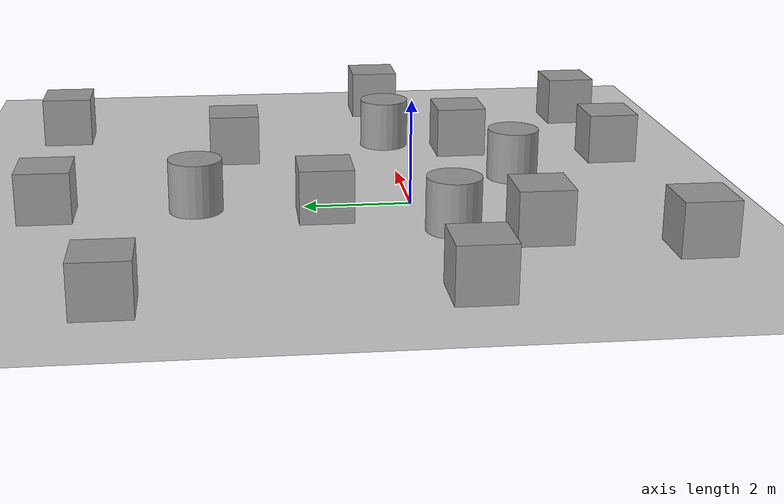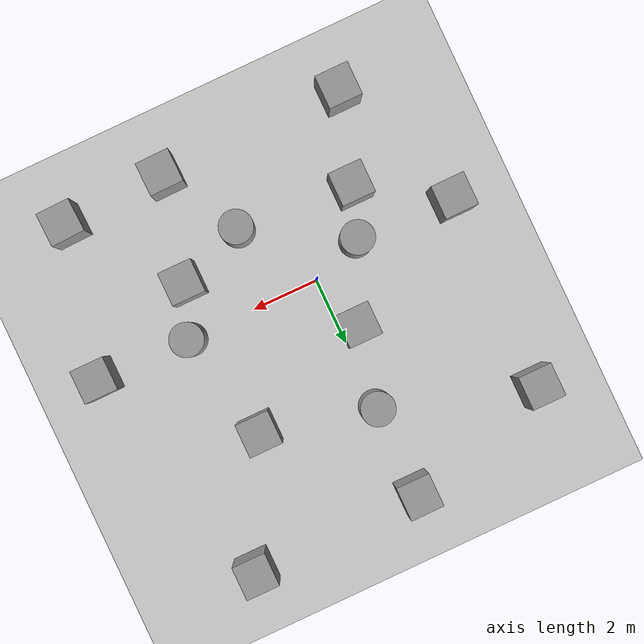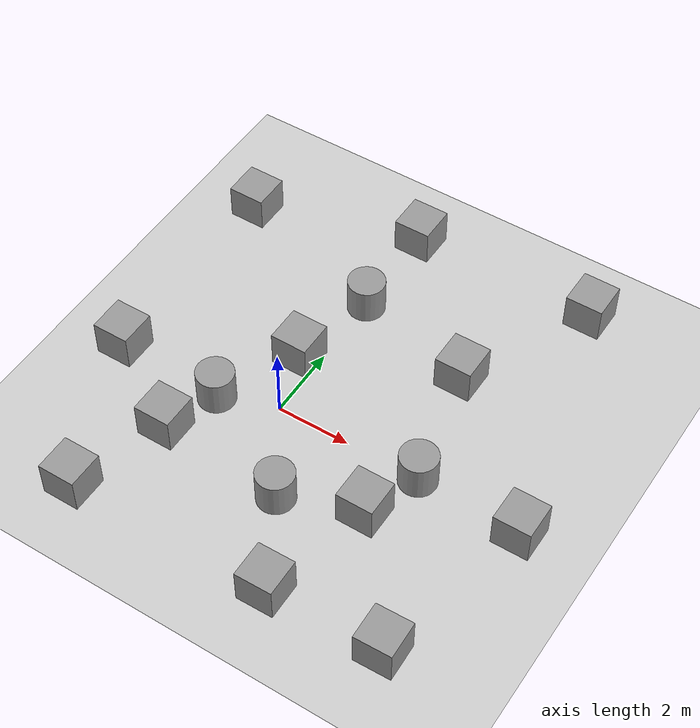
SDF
<sdf version="1.4">
 <world name="default">
  <light name="sun" type="directional">
   <pose>0 0 10 0 -0 0</pose>
   <diffuse>0.8 0.8 0.8 1</diffuse>
   <specular>0.2 0.2 0.2 1</specular>
   <attenuation>
    <range>1000</range>
    <constant>0.9</constant>
    <linear>0.01</linear>
    <quadratic>0.001</quadratic>
   </attenuation>
   <direction>0.5 0.1 -0.9</direction>
  </light>
  <model name="ground_plane">
   <static>1</static>
   <link name="link">
    <collision name="collision">
     <geometry><plane><normal>0 0 1</normal><size>100 100</size></plane></geometry>
     <surface><friction><ode><mu>100</mu><mu2>50</mu2></ode></friction></surface>
    </collision>
    <visual name="visual">
     <cast_shadows>0</cast_shadows>
     <geometry><plane><normal>0 0 1</normal><size>100 100</size></plane></geometry>
     <material>
      <script><uri>file://media/materials/scripts/gazebo.material</uri><name>Gazebo/Grey</name></script>
     </material>
    </visual>
    <velocity_decay><linear>0</linear><angular>0</angular></velocity_decay>
   </link>
  </model>
  <physics type="ode">
   <max_step_size>0.01</max_step_size>
   <real_time_factor>1</real_time_factor>
   <real_time_update_rate>100</real_time_update_rate>
   <gravity>0 0 -9.8</gravity>
  </physics>
  <scene><ambient>0.4 0.4 0.4 1</ambient><background>0.7 0.7 0.7 1</background><shadows>1</shadows></scene>
  <model name="unit_box_1">
   <pose>3.45128 -1.50492 0.5 0 -0 0</pose>
   <link name="link">
    <inertial>
     <mass>1</mass>
     <inertia><ixx>1</ixx><ixy>0</ixy><ixz>0</ixz><iyy>1</iyy><iyz>0</iyz><izz>1</izz></inertia>
    </inertial>
    <collision name="collision"><geometry><box><size>1 1 1</size></box></geometry></collision>
    <visual name="visual">
     <geometry><box><size>1 1 1</size></box></geometry>
     <material>
      <script><uri>file://media/materials/scripts/gazebo.material</uri><name>Gazebo/Grey</name></script>
     </material>
    </visual>
    <velocity_decay><linear>0</linear><angular>0</angular></velocity_decay>
   </link>
   <static>0</static>
  </model>
  <model name="unit_box_2">
   <pose>-2 -2 0.5 0 -0 0</pose>
   <link name="link">
    <inertial>
     <mass>1</mass>
     <inertia><ixx>1</ixx><ixy>0</ixy><ixz>0</ixz><iyy>1</iyy><iyz>0</iyz><izz>1</izz></inertia>
    </inertial>
    <collision name="collision"><geometry><box><size>1 1 1</size></box></geometry></collision>
    <visual name="visual">
     <geometry><box><size>1 1 1</size></box></geometry>
     <material>
      <script><uri>file://media/materials/scripts/gazebo.material</uri><name>Gazebo/Grey</name></script>
     </material>
    </visual>
    <velocity_decay><linear>0</linear><angular>0</angular></velocity_decay>
   </link>
   <static>0</static>
  </model>
  <model name="unit_box_3">
   <pose>-0.507011 1.65376 0.5 0 -0 0</pose>
   <link name="link">
    <inertial>
     <mass>1</mass>
     <inertia><ixx>1</ixx><ixy>0</ixy><ixz>0</ixz><iyy>1</iyy><iyz>0</iyz><izz>1</izz></inertia>
    </inertial>
    <collision name="collision"><geometry><box><size>1 1 1</size></box></geometry></collision>
    <visual name="visual">
     <geometry><box><size>1 1 1</size></box></geometry>
     <material>
      <script><uri>file://media/materials/scripts/gazebo.material</uri><name>Gazebo/Grey</name></script>
     </material>
    </visual>
    <velocity_decay><linear>0</linear><angular>0</angular></velocity_decay>
   </link>
   <static>0</static>
  </model>
  <model name="unit_box_4">
   <pose>3.30014 3.22538 0.5 0 -0 0</pose>
   <link name="link">
    <inertial>
     <mass>1</mass>
     <inertia><ixx>1</ixx><ixy>0</ixy><ixz>0</ixz><iyy>1</iyy><iyz>0</iyz><izz>1</izz></inertia>
    </inertial>
    <collision name="collision"><geometry><box><size>1 1 1</size></box></geometry></collision>
    <visual name="visual">
     <geometry><box><size>1 1 1</size></box></geometry>
     <material>
      <script><uri>file://media/materials/scripts/gazebo.material</uri><name>Gazebo/Grey</name></script>
     </material>
    </visual>
    <velocity_decay><linear>0</linear><angular>0</angular></velocity_decay>
   </link>
   <static>0</static>
  </model>
  <model name="unit_cylinder_1">
   <pose>4 -0 0.49912 -0 -0 -0</pose>
   <link name="link">
    <inertial>
     <mass>1</mass>
     <inertia><ixx>1</ixx><ixy>0</ixy><ixz>0</ixz><iyy>1</iyy><iyz>0</iyz><izz>1</izz></inertia>
    </inertial>
    <collision name="collision">
     <geometry><cylinder><radius>0.5</radius><length>1</length></cylinder></geometry>
    </collision>
    <visual name="visual">
     <geometry><cylinder><radius>0.5</radius><length>1</length></cylinder></geometry>
     <material>
      <script><uri>file://media/materials/scripts/gazebo.material</uri><name>Gazebo/Grey</name></script>
     </material>
    </visual>
    <velocity_decay><linear>0</linear><angular>0</angular></velocity_decay>
   </link>
   <static>0</static>
  </model>
  <model name="unit_cylinder_2">
   <pose>0 4 0.49912 -0 -0 -0</pose>
   <link name="link">
    <inertial>
     <mass>1</mass>
     <inertia><ixx>1</ixx><ixy>0</ixy><ixz>0</ixz><iyy>1</iyy><iyz>0</iyz><izz>1</izz></inertia>
    </inertial>
    <collision name="collision">
     <geometry><cylinder><radius>0.5</radius><length>1</length></cylinder></geometry>
    </collision>
    <visual name="visual">
     <geometry><cylinder><radius>0.5</radius><length>1</length></cylinder></geometry>
     <material>
      <script><uri>file://media/materials/scripts/gazebo.material</uri><name>Gazebo/Grey</name></script>
     </material>
    </visual>
    <velocity_decay><linear>0</linear><angular>0</angular></velocity_decay>
   </link>
   <static>0</static>
  </model>
  <model name="unit_cylinder_3">
   <pose>-1.50746 -0.553057 0.49912 -0 -0 -1e-06</pose>
   <link name="link">
    <inertial>
     <mass>1</mass>
     <inertia><ixx>1</ixx><ixy>0</ixy><ixz>0</ixz><iyy>1</iyy><iyz>0</iyz><izz>1</izz></inertia>
    </inertial>
    <collision name="collision">
     <geometry><cylinder><radius>0.5</radius><length>1</length></cylinder></geometry>
    </collision>
    <visual name="visual">
     <geometry><cylinder><radius>0.5</radius><length>1</length></cylinder></geometry>
     <material>
      <script><uri>file://media/materials/scripts/gazebo.material</uri><name>Gazebo/Grey</name></script>
     </material>
    </visual>
    <velocity_decay><linear>0</linear><angular>0</angular></velocity_decay>
   </link>
   <static>0</static>
  </model>
  <model name="unit_cylinder_4">
   <pose>1.43029 -2.25382 0.49912 -0 -0 -1e-06</pose>
   <link name="link">
    <inertial>
     <mass>1</mass>
     <inertia><ixx>1</ixx><ixy>0</ixy><ixz>0</ixz><iyy>1</iyy><iyz>0</iyz><izz>1</izz></inertia>
    </inertial>
    <collision name="collision">
     <geometry><cylinder><radius>0.5</radius><length>1</length></cylinder></geometry>
    </collision>
    <visual name="visual">
     <geometry><cylinder><radius>0.5</radius><length>1</length></cylinder></geometry>
     <material>
      <script><uri>file://media/materials/scripts/gazebo.material</uri><name>Gazebo/Grey</name></script>
     </material>
    </visual>
    <velocity_decay><linear>0</linear><angular>0</angular></velocity_decay>
   </link>
   <static>0</static>
  </model>
  <spherical_coordinates>
   <surface_model>EARTH_WGS84</surface_model>
   <latitude_deg>0</latitude_deg>
   <longitude_deg>0</longitude_deg>
   <elevation>0</elevation>
   <heading_deg>0</heading_deg>
  </spherical_coordinates>
  <model name="unit_box_2_0">
   <pose>-4.43389 -0.463947 0.499156 0.000232 -1e-06 0.001097</pose>
   <link name="link">
    <inertial>
     <mass>1</mass>
     <inertia><ixx>1</ixx><ixy>0</ixy><ixz>0</ixz><iyy>1</iyy><iyz>0</iyz><izz>1</izz></inertia>
    </inertial>
    <collision name="collision"><geometry><box><size>1 7.26978 1</size></box></geometry></collision>
    <visual name="visual">
     <geometry><box><size>1 1 1</size></box></geometry>
     <material>
      <script><uri>file://media/materials/scripts/gazebo.material</uri><name>Gazebo/Grey</name></script>
     </material>
    </visual>
    <velocity_decay><linear>0</linear><angular>0</angular></velocity_decay>
   </link>
   <static>0</static>
  </model>
  <model name="unit_box_3_0">
   <pose>-4.38938 5.3797 0.430624 0.000346 8.1e-05 -0.000267</pose>
   <link name="link">
    <inertial>
     <mass>1</mass>
     <inertia><ixx>1</ixx><ixy>0</ixy><ixz>0</ixz><iyy>1</iyy><iyz>0</iyz><izz>1</izz></inertia>
    </inertial>
    <collision name="collision"><geometry><box><size>1 4.25055 1</size></box></geometry></collision>
    <visual name="visual">
     <geometry><box><size>1 1 1</size></box></geometry>
     <material>
      <script><uri>file://media/materials/scripts/gazebo.material</uri><name>Gazebo/Grey</name></script>
     </material>
    </visual>
    <velocity_decay><linear>0</linear><angular>0</angular></velocity_decay>
   </link>
   <static>0</static>
  </model>
  <model name="unit_box_5">
   <pose>-2.81729 -4.59983 0.499209 -1.57075 -0.000268 0.000637</pose>
   <link name="link">
    <inertial>
     <mass>1</mass>
     <inertia><ixx>1</ixx><ixy>0</ixy><ixz>0</ixz><iyy>1</iyy><iyz>0</iyz><izz>1</izz></inertia>
    </inertial>
    <collision name="collision"><geometry><box><size>5.75885 1 1</size></box></geometry></collision>
    <visual name="visual">
     <geometry><box><size>1 1 1</size></box></geometry>
     <material>
      <script><uri>file://media/materials/scripts/gazebo.material</uri><name>Gazebo/Grey</name></script>
     </material>
    </visual>
    <velocity_decay><linear>0</linear><angular>0</angular></velocity_decay>
   </link>
   <static>0</static>
  </model>
  <model name="unit_box_6">
   <pose>2.71265 -4.53175 0.492382 0 -0.002992 0.015411</pose>
   <link name="link">
    <inertial>
     <mass>1</mass>
     <inertia><ixx>1</ixx><ixy>0</ixy><ixz>0</ixz><iyy>1</iyy><iyz>0</iyz><izz>1</izz></inertia>
    </inertial>
    <collision name="collision"><geometry><box><size>5.09672 1 1</size></box></geometry></collision>
    <visual name="visual">
     <geometry><box><size>1 1 1</size></box></geometry>
     <material>
      <script><uri>file://media/materials/scripts/gazebo.material</uri><name>Gazebo/Grey</name></script>
     </material>
    </visual>
    <velocity_decay><linear>0</linear><angular>0</angular></velocity_decay>
   </link>
   <static>0</static>
  </model>
  <model name="unit_box_7">
   <pose>-0.005937 6.71732 0.458004 2e-05 -0.01093 -0.001866</pose>
   <link name="link">
    <inertial>
     <mass>1</mass>
     <inertia><ixx>1</ixx><ixy>0</ixy><ixz>0</ixz><iyy>1</iyy><iyz>0</iyz><izz>1</izz></inertia>
    </inertial>
    <collision name="collision"><geometry><box><size>7.70448 1 1</size></box></geometry></collision>
    <visual name="visual">
     <geometry><box><size>1 1 1</size></box></geometry>
     <material>
      <script><uri>file://media/materials/scripts/gazebo.material</uri><name>Gazebo/Grey</name></script>
     </material>
    </visual>
    <velocity_decay><linear>0</linear><angular>0</angular></velocity_decay>
   </link>
   <static>0</static>
  </model>
  <model name="unit_box_9">
   <pose>5.78916 -4.43505 0.5 0 -0 0.028411</pose>
   <link name="link">
    <inertial>
     <mass>1</mass>
     <inertia><ixx>1</ixx><ixy>0</ixy><ixz>0</ixz><iyy>1</iyy><iyz>0</iyz><izz>1</izz></inertia>
    </inertial>
    <collision name="collision"><geometry><box><size>1 1 1</size></box></geometry></collision>
    <visual name="visual">
     <geometry><box><size>1 1 1</size></box></geometry>
     <material>
      <script><uri>file://media/materials/scripts/gazebo.material</uri><name>Gazebo/Grey</name></script>
     </material>
    </visual>
    <velocity_decay><linear>0</linear><angular>0</angular></velocity_decay>
   </link>
   <static>0</static>
  </model>
  <model name="unit_box_10">
   <pose>5.05757 6.76572 0.5 0 -0 -0.000554</pose>
   <link name="link">
    <inertial>
     <mass>1</mass>
     <inertia><ixx>1</ixx><ixy>0</ixy><ixz>0</ixz><iyy>1</iyy><iyz>0</iyz><izz>1</izz></inertia>
    </inertial>
    <collision name="collision"><geometry><box><size>2.39668 1 1</size></box></geometry></collision>
    <visual name="visual">
     <geometry><box><size>1 1 1</size></box></geometry>
     <material>
      <script><uri>file://media/materials/scripts/gazebo.material</uri><name>Gazebo/Grey</name></script>
     </material>
    </visual>
    <velocity_decay><linear>0</linear><angular>0</angular></velocity_decay>
   </link>
   <static>0</static>
  </model>
  <model name="unit_box_11">
   <pose>6.80867 -0.072303 0.499423 3.5e-05 4.9e-05 0.003358</pose>
   <link name="link">
    <inertial>
     <mass>1</mass>
     <inertia><ixx>1</ixx><ixy>0</ixy><ixz>0</ixz><iyy>1</iyy><iyz>0</iyz><izz>1</izz></inertia>
    </inertial>
    <collision name="collision"><geometry><box><size>1 13.4556 1</size></box></geometry></collision>
    <visual name="visual">
     <geometry><box><size>1 1 1</size></box></geometry>
     <material>
      <script><uri>file://media/materials/scripts/gazebo.material</uri><name>Gazebo/Grey</name></script>
     </material>
    </visual>
    <velocity_decay><linear>0</linear><angular>0</angular></velocity_decay>
   </link>
   <static>0</static>
  </model>
 </world>
</sdf>
